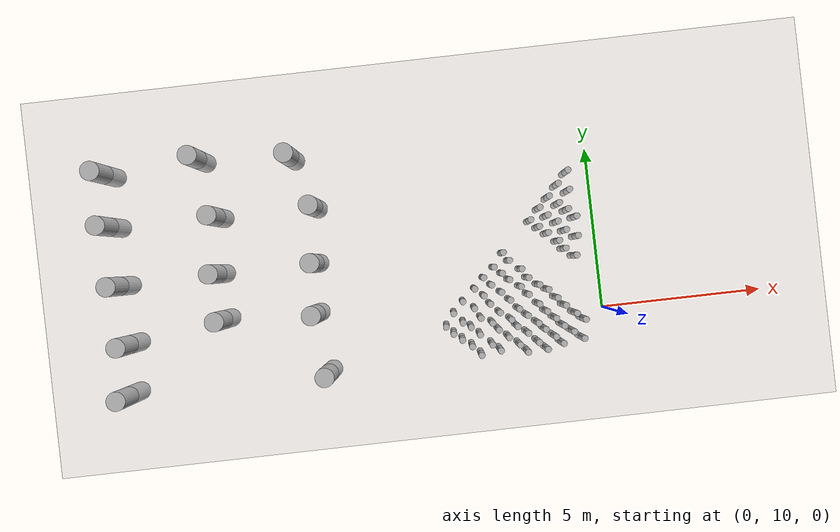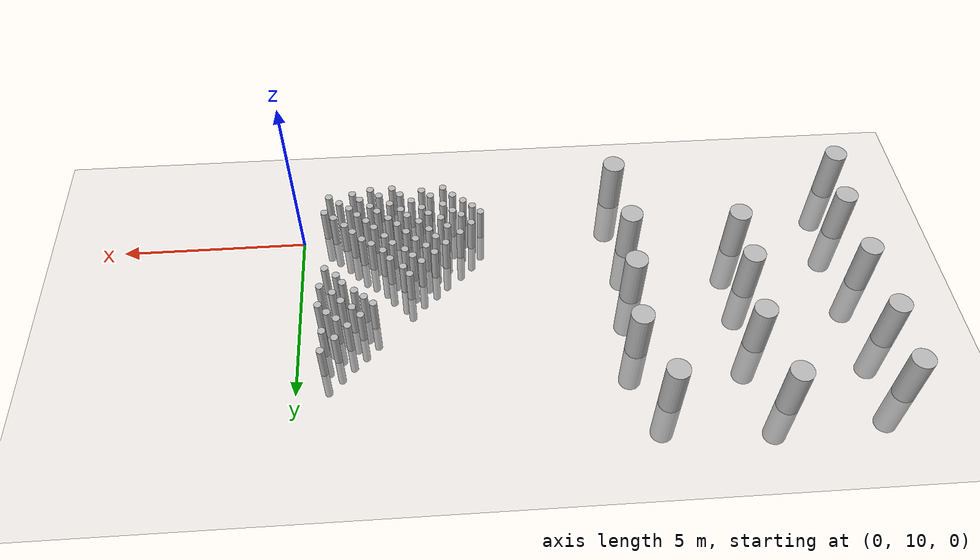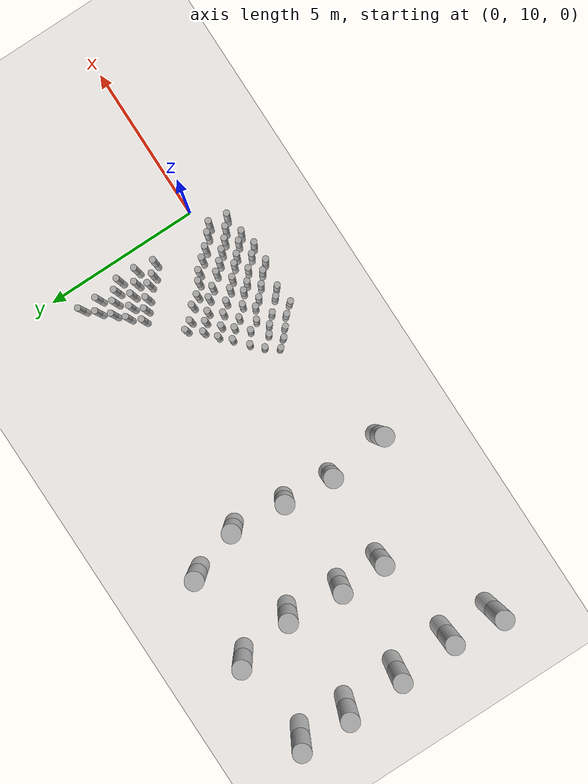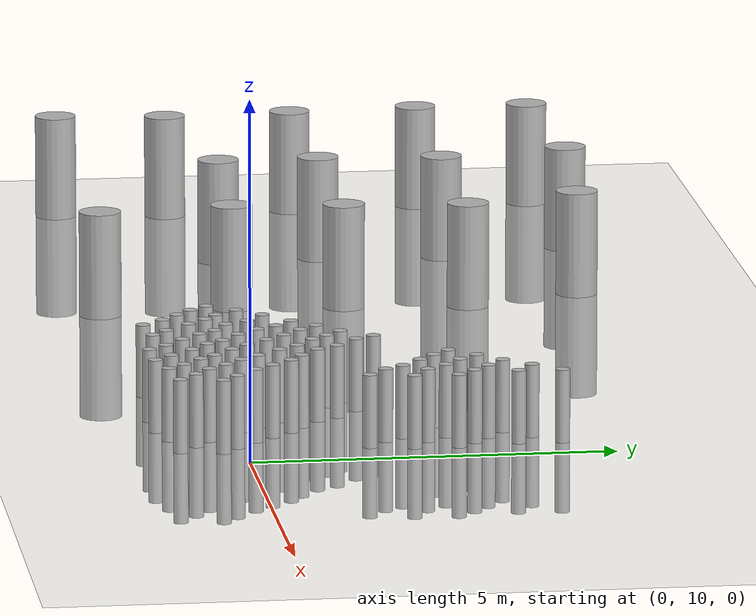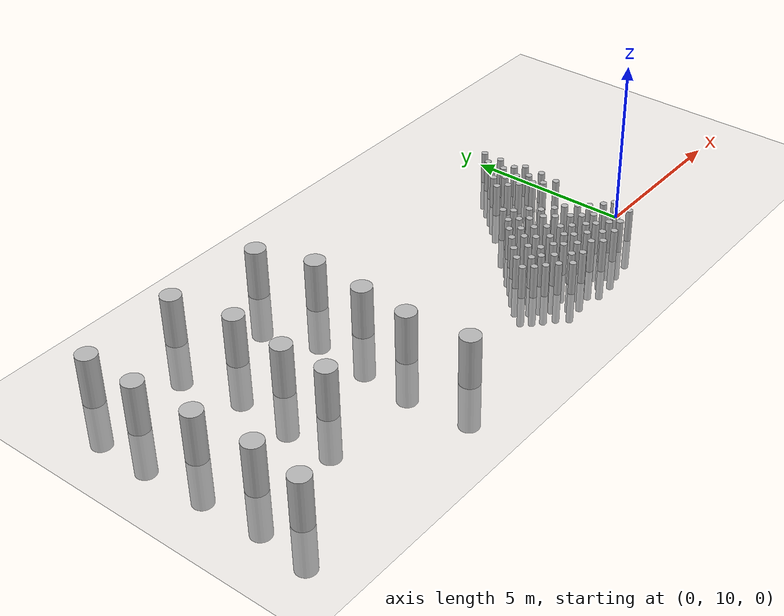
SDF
<sdf version="1.7">
 <world name="farmland_world">
  <model name="ground_plane">
   <static>1</static>
   <link name="link">
    <collision name="collision">
     <geometry><plane><normal>0 0 1</normal><size>40.0 40.0</size></plane></geometry>
     <surface><friction><ode><mu>100</mu><mu2>50</mu2></ode></friction></surface>
    </collision>
    <visual name="visual">
     <cast_shadows>0</cast_shadows>
     <geometry><plane><normal>0 0 1</normal><size>40.0 40.0</size></plane></geometry>
     <material>
      <script><uri>file://media/materials/scripts/gazebo.material</uri><name>Gazebo/Grey</name></script>
     </material>
    </visual>
   </link>
  </model>
  <model name="tree_0_0">
   <static>1</static>
   <link name="link">
    <collision name="collision">
     <geometry><cylinder><radius>0.3</radius><length>3.0</length></cylinder></geometry>
     <surface><friction><ode><mu>100</mu><mu2>50</mu2></ode></friction></surface>
    </collision>
    <visual name="visual">
     <geometry><cylinder><radius>0.3</radius><length>3.0</length></cylinder></geometry>
    </visual>
   </link>
   <pose>-15.188938652736043 15.912597027168243 0 0 0 0</pose>
  </model>
  <model name="tree_0_1">
   <static>1</static>
   <link name="link">
    <collision name="collision">
     <geometry><cylinder><radius>0.3</radius><length>3.0</length></cylinder></geometry>
     <surface><friction><ode><mu>100</mu><mu2>50</mu2></ode></friction></surface>
    </collision>
    <visual name="visual">
     <geometry><cylinder><radius>0.3</radius><length>3.0</length></cylinder></geometry>
    </visual>
   </link>
   <pose>-15.203481922949232 14.246356640369596 0 0 0 0</pose>
  </model>
  <model name="tree_0_2">
   <static>1</static>
   <link name="link">
    <collision name="collision">
     <geometry><cylinder><radius>0.3</radius><length>3.0</length></cylinder></geometry>
     <surface><friction><ode><mu>100</mu><mu2>50</mu2></ode></friction></surface>
    </collision>
    <visual name="visual">
     <geometry><cylinder><radius>0.3</radius><length>3.0</length></cylinder></geometry>
    </visual>
   </link>
   <pose>-15.091736200138948 12.349055719096812 0 0 0 0</pose>
  </model>
  <model name="tree_0_3">
   <static>1</static>
   <link name="link">
    <collision name="collision">
     <geometry><cylinder><radius>0.3</radius><length>3.0</length></cylinder></geometry>
     <surface><friction><ode><mu>100</mu><mu2>50</mu2></ode></friction></surface>
    </collision>
    <visual name="visual">
     <geometry><cylinder><radius>0.3</radius><length>3.0</length></cylinder></geometry>
    </visual>
   </link>
   <pose>-15.0005537468897 10.475004583335092 0 0 0 0</pose>
  </model>
  <model name="tree_0_4">
   <static>1</static>
   <link name="link">
    <collision name="collision">
     <geometry><cylinder><radius>0.3</radius><length>3.0</length></cylinder></geometry>
     <surface><friction><ode><mu>100</mu><mu2>50</mu2></ode></friction></surface>
    </collision>
    <visual name="visual">
     <geometry><cylinder><radius>0.3</radius><length>3.0</length></cylinder></geometry>
    </visual>
   </link>
   <pose>-15.176880996043332 8.868891120534228 0 0 0 0</pose>
  </model>
  <model name="tree_0_10">
   <static>1</static>
   <link name="link">
    <collision name="collision">
     <geometry><cylinder><radius>0.3</radius><length>3.0</length></cylinder></geometry>
     <surface><friction><ode><mu>100</mu><mu2>50</mu2></ode></friction></surface>
    </collision>
    <visual name="visual">
     <geometry><cylinder><radius>0.3</radius><length>3.0</length></cylinder></geometry>
    </visual>
   </link>
   <pose>-12.198636150211716 16.060505452191354 0 0 0 0</pose>
  </model>
  <model name="tree_0_11">
   <static>1</static>
   <link name="link">
    <collision name="collision">
     <geometry><cylinder><radius>0.3</radius><length>3.0</length></cylinder></geometry>
     <surface><friction><ode><mu>100</mu><mu2>50</mu2></ode></friction></surface>
    </collision>
    <visual name="visual">
     <geometry><cylinder><radius>0.3</radius><length>3.0</length></cylinder></geometry>
    </visual>
   </link>
   <pose>-11.810280494804624 14.18254066707638 0 0 0 0</pose>
  </model>
  <model name="tree_0_12">
   <static>1</static>
   <link name="link">
    <collision name="collision">
     <geometry><cylinder><radius>0.3</radius><length>3.0</length></cylinder></geometry>
     <surface><friction><ode><mu>100</mu><mu2>50</mu2></ode></friction></surface>
    </collision>
    <visual name="visual">
     <geometry><cylinder><radius>0.3</radius><length>3.0</length></cylinder></geometry>
    </visual>
   </link>
   <pose>-11.963897516112725 12.390226497976228 0 0 0 0</pose>
  </model>
  <model name="tree_0_13">
   <static>1</static>
   <link name="link">
    <collision name="collision">
     <geometry><cylinder><radius>0.3</radius><length>3.0</length></cylinder></geometry>
     <surface><friction><ode><mu>100</mu><mu2>50</mu2></ode></friction></surface>
    </collision>
    <visual name="visual">
     <geometry><cylinder><radius>0.3</radius><length>3.0</length></cylinder></geometry>
    </visual>
   </link>
   <pose>-11.947877016899797 10.925969713041379 0 0 0 0</pose>
  </model>
  <model name="tree_0_20">
   <static>1</static>
   <link name="link">
    <collision name="collision">
     <geometry><cylinder><radius>0.3</radius><length>3.0</length></cylinder></geometry>
     <surface><friction><ode><mu>100</mu><mu2>50</mu2></ode></friction></surface>
    </collision>
    <visual name="visual">
     <geometry><cylinder><radius>0.3</radius><length>3.0</length></cylinder></geometry>
    </visual>
   </link>
   <pose>-9.286984200792807 15.807528742943724 0 0 0 0</pose>
  </model>
  <model name="tree_0_21">
   <static>1</static>
   <link name="link">
    <collision name="collision">
     <geometry><cylinder><radius>0.3</radius><length>3.0</length></cylinder></geometry>
     <surface><friction><ode><mu>100</mu><mu2>50</mu2></ode></friction></surface>
    </collision>
    <visual name="visual">
     <geometry><cylinder><radius>0.3</radius><length>3.0</length></cylinder></geometry>
    </visual>
   </link>
   <pose>-8.71895008446544 14.152625368785882 0 0 0 0</pose>
  </model>
  <model name="tree_0_22">
   <static>1</static>
   <link name="link">
    <collision name="collision">
     <geometry><cylinder><radius>0.3</radius><length>3.0</length></cylinder></geometry>
     <surface><friction><ode><mu>100</mu><mu2>50</mu2></ode></friction></surface>
    </collision>
    <visual name="visual">
     <geometry><cylinder><radius>0.3</radius><length>3.0</length></cylinder></geometry>
    </visual>
   </link>
   <pose>-8.868159347672215 12.382050561455772 0 0 0 0</pose>
  </model>
  <model name="tree_0_23">
   <static>1</static>
   <link name="link">
    <collision name="collision">
     <geometry><cylinder><radius>0.3</radius><length>3.0</length></cylinder></geometry>
     <surface><friction><ode><mu>100</mu><mu2>50</mu2></ode></friction></surface>
    </collision>
    <visual name="visual">
     <geometry><cylinder><radius>0.3</radius><length>3.0</length></cylinder></geometry>
    </visual>
   </link>
   <pose>-9.004799411582681 10.782474336634904 0 0 0 0</pose>
  </model>
  <model name="tree_0_24">
   <static>1</static>
   <link name="link">
    <collision name="collision">
     <geometry><cylinder><radius>0.3</radius><length>3.0</length></cylinder></geometry>
     <surface><friction><ode><mu>100</mu><mu2>50</mu2></ode></friction></surface>
    </collision>
    <visual name="visual">
     <geometry><cylinder><radius>0.3</radius><length>3.0</length></cylinder></geometry>
    </visual>
   </link>
   <pose>-8.80205373108638 8.876663077848626 0 0 0 0</pose>
  </model>
  <model name="tree_2_35">
   <static>1</static>
   <link name="link">
    <collision name="collision">
     <geometry><cylinder><radius>0.1</radius><length>2.0</length></cylinder></geometry>
     <surface><friction><ode><mu>100</mu><mu2>50</mu2></ode></friction></surface>
    </collision>
    <visual name="visual">
     <geometry><cylinder><radius>0.1</radius><length>2.0</length></cylinder></geometry>
    </visual>
   </link>
   <pose>-3.9622020280694774 8.973889146367657 0 0 0 0</pose>
  </model>
  <model name="tree_2_36">
   <static>1</static>
   <link name="link">
    <collision name="collision">
     <geometry><cylinder><radius>0.1</radius><length>2.0</length></cylinder></geometry>
     <surface><friction><ode><mu>100</mu><mu2>50</mu2></ode></friction></surface>
    </collision>
    <visual name="visual">
     <geometry><cylinder><radius>0.1</radius><length>2.0</length></cylinder></geometry>
    </visual>
   </link>
   <pose>-4.218497410122248 9.269755400800028 0 0 0 0</pose>
  </model>
  <model name="tree_2_37">
   <static>1</static>
   <link name="link">
    <collision name="collision">
     <geometry><cylinder><radius>0.1</radius><length>2.0</length></cylinder></geometry>
     <surface><friction><ode><mu>100</mu><mu2>50</mu2></ode></friction></surface>
    </collision>
    <visual name="visual">
     <geometry><cylinder><radius>0.1</radius><length>2.0</length></cylinder></geometry>
    </visual>
   </link>
   <pose>-4.504532542228673 9.503960947641339 0 0 0 0</pose>
  </model>
  <model name="tree_2_38">
   <static>1</static>
   <link name="link">
    <collision name="collision">
     <geometry><cylinder><radius>0.1</radius><length>2.0</length></cylinder></geometry>
     <surface><friction><ode><mu>100</mu><mu2>50</mu2></ode></friction></surface>
    </collision>
    <visual name="visual">
     <geometry><cylinder><radius>0.1</radius><length>2.0</length></cylinder></geometry>
    </visual>
   </link>
   <pose>-4.750317775413917 9.716508049751724 0 0 0 0</pose>
  </model>
  <model name="tree_2_39">
   <static>1</static>
   <link name="link">
    <collision name="collision">
     <geometry><cylinder><radius>0.1</radius><length>2.0</length></cylinder></geometry>
     <surface><friction><ode><mu>100</mu><mu2>50</mu2></ode></friction></surface>
    </collision>
    <visual name="visual">
     <geometry><cylinder><radius>0.1</radius><length>2.0</length></cylinder></geometry>
    </visual>
   </link>
   <pose>-4.961447914720045 9.96134387457298 0 0 0 0</pose>
  </model>
  <model name="tree_2_71">
   <static>1</static>
   <link name="link">
    <collision name="collision">
     <geometry><cylinder><radius>0.1</radius><length>2.0</length></cylinder></geometry>
     <surface><friction><ode><mu>100</mu><mu2>50</mu2></ode></friction></surface>
    </collision>
    <visual name="visual">
     <geometry><cylinder><radius>0.1</radius><length>2.0</length></cylinder></geometry>
    </visual>
   </link>
   <pose>-1.9134299410022986 8.926474159186103 0 0 0 0</pose>
  </model>
  <model name="tree_2_72">
   <static>1</static>
   <link name="link">
    <collision name="collision">
     <geometry><cylinder><radius>0.1</radius><length>2.0</length></cylinder></geometry>
     <surface><friction><ode><mu>100</mu><mu2>50</mu2></ode></friction></surface>
    </collision>
    <visual name="visual">
     <geometry><cylinder><radius>0.1</radius><length>2.0</length></cylinder></geometry>
    </visual>
   </link>
   <pose>-2.159365029131232 9.171384043275479 0 0 0 0</pose>
  </model>
  <model name="tree_2_73">
   <static>1</static>
   <link name="link">
    <collision name="collision">
     <geometry><cylinder><radius>0.1</radius><length>2.0</length></cylinder></geometry>
     <surface><friction><ode><mu>100</mu><mu2>50</mu2></ode></friction></surface>
    </collision>
    <visual name="visual">
     <geometry><cylinder><radius>0.1</radius><length>2.0</length></cylinder></geometry>
    </visual>
   </link>
   <pose>-2.4577474948874216 9.488132304672078 0 0 0 0</pose>
  </model>
  <model name="tree_2_74">
   <static>1</static>
   <link name="link">
    <collision name="collision">
     <geometry><cylinder><radius>0.1</radius><length>2.0</length></cylinder></geometry>
     <surface><friction><ode><mu>100</mu><mu2>50</mu2></ode></friction></surface>
    </collision>
    <visual name="visual">
     <geometry><cylinder><radius>0.1</radius><length>2.0</length></cylinder></geometry>
    </visual>
   </link>
   <pose>-2.7630006261787905 9.73053380347542 0 0 0 0</pose>
  </model>
  <model name="tree_2_75">
   <static>1</static>
   <link name="link">
    <collision name="collision">
     <geometry><cylinder><radius>0.1</radius><length>2.0</length></cylinder></geometry>
     <surface><friction><ode><mu>100</mu><mu2>50</mu2></ode></friction></surface>
    </collision>
    <visual name="visual">
     <geometry><cylinder><radius>0.1</radius><length>2.0</length></cylinder></geometry>
    </visual>
   </link>
   <pose>-2.929292210744488 9.961238208450151 0 0 0 0</pose>
  </model>
  <model name="tree_2_76">
   <static>1</static>
   <link name="link">
    <collision name="collision">
     <geometry><cylinder><radius>0.1</radius><length>2.0</length></cylinder></geometry>
     <surface><friction><ode><mu>100</mu><mu2>50</mu2></ode></friction></surface>
    </collision>
    <visual name="visual">
     <geometry><cylinder><radius>0.1</radius><length>2.0</length></cylinder></geometry>
    </visual>
   </link>
   <pose>-3.25464770695766 10.213791297746333 0 0 0 0</pose>
  </model>
  <model name="tree_2_77">
   <static>1</static>
   <link name="link">
    <collision name="collision">
     <geometry><cylinder><radius>0.1</radius><length>2.0</length></cylinder></geometry>
     <surface><friction><ode><mu>100</mu><mu2>50</mu2></ode></friction></surface>
    </collision>
    <visual name="visual">
     <geometry><cylinder><radius>0.1</radius><length>2.0</length></cylinder></geometry>
    </visual>
   </link>
   <pose>-3.5209436233128493 10.508652208841735 0 0 0 0</pose>
  </model>
  <model name="tree_2_78">
   <static>1</static>
   <link name="link">
    <collision name="collision">
     <geometry><cylinder><radius>0.1</radius><length>2.0</length></cylinder></geometry>
     <surface><friction><ode><mu>100</mu><mu2>50</mu2></ode></friction></surface>
    </collision>
    <visual name="visual">
     <geometry><cylinder><radius>0.1</radius><length>2.0</length></cylinder></geometry>
    </visual>
   </link>
   <pose>-3.693728679398263 10.788324537276933 0 0 0 0</pose>
  </model>
  <model name="tree_2_79">
   <static>1</static>
   <link name="link">
    <collision name="collision">
     <geometry><cylinder><radius>0.1</radius><length>2.0</length></cylinder></geometry>
     <surface><friction><ode><mu>100</mu><mu2>50</mu2></ode></friction></surface>
    </collision>
    <visual name="visual">
     <geometry><cylinder><radius>0.1</radius><length>2.0</length></cylinder></geometry>
    </visual>
   </link>
   <pose>-3.9564810171639166 11.028106380455974 0 0 0 0</pose>
  </model>
  <model name="tree_2_110">
   <static>1</static>
   <link name="link">
    <collision name="collision">
     <geometry><cylinder><radius>0.1</radius><length>2.0</length></cylinder></geometry>
     <surface><friction><ode><mu>100</mu><mu2>50</mu2></ode></friction></surface>
    </collision>
    <visual name="visual">
     <geometry><cylinder><radius>0.1</radius><length>2.0</length></cylinder></geometry>
    </visual>
   </link>
   <pose>-0.6515382330412771 9.717331015148037 0 0 0 0</pose>
  </model>
  <model name="tree_2_111">
   <static>1</static>
   <link name="link">
    <collision name="collision">
     <geometry><cylinder><radius>0.1</radius><length>2.0</length></cylinder></geometry>
     <surface><friction><ode><mu>100</mu><mu2>50</mu2></ode></friction></surface>
    </collision>
    <visual name="visual">
     <geometry><cylinder><radius>0.1</radius><length>2.0</length></cylinder></geometry>
    </visual>
   </link>
   <pose>-0.9029069918345026 9.932396428231575 0 0 0 0</pose>
  </model>
  <model name="tree_2_112">
   <static>1</static>
   <link name="link">
    <collision name="collision">
     <geometry><cylinder><radius>0.1</radius><length>2.0</length></cylinder></geometry>
     <surface><friction><ode><mu>100</mu><mu2>50</mu2></ode></friction></surface>
    </collision>
    <visual name="visual">
     <geometry><cylinder><radius>0.1</radius><length>2.0</length></cylinder></geometry>
    </visual>
   </link>
   <pose>-1.2108938586534732 10.217397095038073 0 0 0 0</pose>
  </model>
  <model name="tree_2_113">
   <static>1</static>
   <link name="link">
    <collision name="collision">
     <geometry><cylinder><radius>0.1</radius><length>2.0</length></cylinder></geometry>
     <surface><friction><ode><mu>100</mu><mu2>50</mu2></ode></friction></surface>
    </collision>
    <visual name="visual">
     <geometry><cylinder><radius>0.1</radius><length>2.0</length></cylinder></geometry>
    </visual>
   </link>
   <pose>-1.4373226213990342 10.476553215425714 0 0 0 0</pose>
  </model>
  <model name="tree_2_114">
   <static>1</static>
   <link name="link">
    <collision name="collision">
     <geometry><cylinder><radius>0.1</radius><length>2.0</length></cylinder></geometry>
     <surface><friction><ode><mu>100</mu><mu2>50</mu2></ode></friction></surface>
    </collision>
    <visual name="visual">
     <geometry><cylinder><radius>0.1</radius><length>2.0</length></cylinder></geometry>
    </visual>
   </link>
   <pose>-1.691676709947819 10.761102270041352 0 0 0 0</pose>
  </model>
  <model name="tree_2_115">
   <static>1</static>
   <link name="link">
    <collision name="collision">
     <geometry><cylinder><radius>0.1</radius><length>2.0</length></cylinder></geometry>
     <surface><friction><ode><mu>100</mu><mu2>50</mu2></ode></friction></surface>
    </collision>
    <visual name="visual">
     <geometry><cylinder><radius>0.1</radius><length>2.0</length></cylinder></geometry>
    </visual>
   </link>
   <pose>-1.9525184044487895 10.939210153154551 0 0 0 0</pose>
  </model>
  <model name="tree_2_116">
   <static>1</static>
   <link name="link">
    <collision name="collision">
     <geometry><cylinder><radius>0.1</radius><length>2.0</length></cylinder></geometry>
     <surface><friction><ode><mu>100</mu><mu2>50</mu2></ode></friction></surface>
    </collision>
    <visual name="visual">
     <geometry><cylinder><radius>0.1</radius><length>2.0</length></cylinder></geometry>
    </visual>
   </link>
   <pose>-2.264281364958338 11.191772419844481 0 0 0 0</pose>
  </model>
  <model name="tree_2_117">
   <static>1</static>
   <link name="link">
    <collision name="collision">
     <geometry><cylinder><radius>0.1</radius><length>2.0</length></cylinder></geometry>
     <surface><friction><ode><mu>100</mu><mu2>50</mu2></ode></friction></surface>
    </collision>
    <visual name="visual">
     <geometry><cylinder><radius>0.1</radius><length>2.0</length></cylinder></geometry>
    </visual>
   </link>
   <pose>-2.4464782804025234 11.484873066334552 0 0 0 0</pose>
  </model>
  <model name="tree_2_118">
   <static>1</static>
   <link name="link">
    <collision name="collision">
     <geometry><cylinder><radius>0.1</radius><length>2.0</length></cylinder></geometry>
     <surface><friction><ode><mu>100</mu><mu2>50</mu2></ode></friction></surface>
    </collision>
    <visual name="visual">
     <geometry><cylinder><radius>0.1</radius><length>2.0</length></cylinder></geometry>
    </visual>
   </link>
   <pose>-2.79316826616015 11.78830092527027 0 0 0 0</pose>
  </model>
  <model name="tree_2_119">
   <static>1</static>
   <link name="link">
    <collision name="collision">
     <geometry><cylinder><radius>0.1</radius><length>2.0</length></cylinder></geometry>
     <surface><friction><ode><mu>100</mu><mu2>50</mu2></ode></friction></surface>
    </collision>
    <visual name="visual">
     <geometry><cylinder><radius>0.1</radius><length>2.0</length></cylinder></geometry>
    </visual>
   </link>
   <pose>-2.958938743072737 12.049731483031 0 0 0 0</pose>
  </model>
  <model name="tree_2_154">
   <static>1</static>
   <link name="link">
    <collision name="collision">
     <geometry><cylinder><radius>0.1</radius><length>2.0</length></cylinder></geometry>
     <surface><friction><ode><mu>100</mu><mu2>50</mu2></ode></friction></surface>
    </collision>
    <visual name="visual">
     <geometry><cylinder><radius>0.1</radius><length>2.0</length></cylinder></geometry>
    </visual>
   </link>
   <pose>-0.7178020939533792 11.718756306111352 0 0 0 0</pose>
  </model>
  <model name="tree_2_155">
   <static>1</static>
   <link name="link">
    <collision name="collision">
     <geometry><cylinder><radius>0.1</radius><length>2.0</length></cylinder></geometry>
     <surface><friction><ode><mu>100</mu><mu2>50</mu2></ode></friction></surface>
    </collision>
    <visual name="visual">
     <geometry><cylinder><radius>0.1</radius><length>2.0</length></cylinder></geometry>
    </visual>
   </link>
   <pose>-1.022637077949053 11.970871446959404 0 0 0 0</pose>
  </model>
  <model name="tree_2_156">
   <static>1</static>
   <link name="link">
    <collision name="collision">
     <geometry><cylinder><radius>0.1</radius><length>2.0</length></cylinder></geometry>
     <surface><friction><ode><mu>100</mu><mu2>50</mu2></ode></friction></surface>
    </collision>
    <visual name="visual">
     <geometry><cylinder><radius>0.1</radius><length>2.0</length></cylinder></geometry>
    </visual>
   </link>
   <pose>-1.1940386431235368 12.228151937682467 0 0 0 0</pose>
  </model>
  <model name="tree_2_157">
   <static>1</static>
   <link name="link">
    <collision name="collision">
     <geometry><cylinder><radius>0.1</radius><length>2.0</length></cylinder></geometry>
     <surface><friction><ode><mu>100</mu><mu2>50</mu2></ode></friction></surface>
    </collision>
    <visual name="visual">
     <geometry><cylinder><radius>0.1</radius><length>2.0</length></cylinder></geometry>
    </visual>
   </link>
   <pose>-1.5073592860621352 12.506254013429565 0 0 0 0</pose>
  </model>
  <model name="tree_2_158">
   <static>1</static>
   <link name="link">
    <collision name="collision">
     <geometry><cylinder><radius>0.1</radius><length>2.0</length></cylinder></geometry>
     <surface><friction><ode><mu>100</mu><mu2>50</mu2></ode></friction></surface>
    </collision>
    <visual name="visual">
     <geometry><cylinder><radius>0.1</radius><length>2.0</length></cylinder></geometry>
    </visual>
   </link>
   <pose>-1.7602710342026335 12.726628349052469 0 0 0 0</pose>
  </model>
  <model name="tree_2_159">
   <static>1</static>
   <link name="link">
    <collision name="collision">
     <geometry><cylinder><radius>0.1</radius><length>2.0</length></cylinder></geometry>
     <surface><friction><ode><mu>100</mu><mu2>50</mu2></ode></friction></surface>
    </collision>
    <visual name="visual">
     <geometry><cylinder><radius>0.1</radius><length>2.0</length></cylinder></geometry>
    </visual>
   </link>
   <pose>-2.0019301251231227 12.958106680565077 0 0 0 0</pose>
  </model>
  <model name="tree_2_198">
   <static>1</static>
   <link name="link">
    <collision name="collision">
     <geometry><cylinder><radius>0.1</radius><length>2.0</length></cylinder></geometry>
     <surface><friction><ode><mu>100</mu><mu2>50</mu2></ode></friction></surface>
    </collision>
    <visual name="visual">
     <geometry><cylinder><radius>0.1</radius><length>2.0</length></cylinder></geometry>
    </visual>
   </link>
   <pose>-0.7145939792266051 13.753588885283417 0 0 0 0</pose>
  </model>
  <model name="tree_2_199">
   <static>1</static>
   <link name="link">
    <collision name="collision">
     <geometry><cylinder><radius>0.1</radius><length>2.0</length></cylinder></geometry>
     <surface><friction><ode><mu>100</mu><mu2>50</mu2></ode></friction></surface>
    </collision>
    <visual name="visual">
     <geometry><cylinder><radius>0.1</radius><length>2.0</length></cylinder></geometry>
    </visual>
   </link>
   <pose>-1.0426244276867378 13.978159229005612 0 0 0 0</pose>
  </model>
  <model name="tree_2_274">
   <static>1</static>
   <link name="link">
    <collision name="collision">
     <geometry><cylinder><radius>0.1</radius><length>2.0</length></cylinder></geometry>
     <surface><friction><ode><mu>100</mu><mu2>50</mu2></ode></friction></surface>
    </collision>
    <visual name="visual">
     <geometry><cylinder><radius>0.1</radius><length>2.0</length></cylinder></geometry>
    </visual>
   </link>
   <pose>-3.3576854524746014 9.046221494850334 0 0 0 0</pose>
  </model>
  <model name="tree_2_275">
   <static>1</static>
   <link name="link">
    <collision name="collision">
     <geometry><cylinder><radius>0.1</radius><length>2.0</length></cylinder></geometry>
     <surface><friction><ode><mu>100</mu><mu2>50</mu2></ode></friction></surface>
    </collision>
    <visual name="visual">
     <geometry><cylinder><radius>0.1</radius><length>2.0</length></cylinder></geometry>
    </visual>
   </link>
   <pose>-3.5965869434674955 9.258844725206748 0 0 0 0</pose>
  </model>
  <model name="tree_2_276">
   <static>1</static>
   <link name="link">
    <collision name="collision">
     <geometry><cylinder><radius>0.1</radius><length>2.0</length></cylinder></geometry>
     <surface><friction><ode><mu>100</mu><mu2>50</mu2></ode></friction></surface>
    </collision>
    <visual name="visual">
     <geometry><cylinder><radius>0.1</radius><length>2.0</length></cylinder></geometry>
    </visual>
   </link>
   <pose>-3.940045185333485 9.603498110845367 0 0 0 0</pose>
  </model>
  <model name="tree_2_277">
   <static>1</static>
   <link name="link">
    <collision name="collision">
     <geometry><cylinder><radius>0.1</radius><length>2.0</length></cylinder></geometry>
     <surface><friction><ode><mu>100</mu><mu2>50</mu2></ode></friction></surface>
    </collision>
    <visual name="visual">
     <geometry><cylinder><radius>0.1</radius><length>2.0</length></cylinder></geometry>
    </visual>
   </link>
   <pose>-4.192677639353347 9.864076155540431 0 0 0 0</pose>
  </model>
  <model name="tree_2_278">
   <static>1</static>
   <link name="link">
    <collision name="collision">
     <geometry><cylinder><radius>0.1</radius><length>2.0</length></cylinder></geometry>
     <surface><friction><ode><mu>100</mu><mu2>50</mu2></ode></friction></surface>
    </collision>
    <visual name="visual">
     <geometry><cylinder><radius>0.1</radius><length>2.0</length></cylinder></geometry>
    </visual>
   </link>
   <pose>-4.428591520917538 10.03222945930731 0 0 0 0</pose>
  </model>
  <model name="tree_2_279">
   <static>1</static>
   <link name="link">
    <collision name="collision">
     <geometry><cylinder><radius>0.1</radius><length>2.0</length></cylinder></geometry>
     <surface><friction><ode><mu>100</mu><mu2>50</mu2></ode></friction></surface>
    </collision>
    <visual name="visual">
     <geometry><cylinder><radius>0.1</radius><length>2.0</length></cylinder></geometry>
    </visual>
   </link>
   <pose>-4.68577423219013 10.348556811869264 0 0 0 0</pose>
  </model>
  <model name="tree_2_312">
   <static>1</static>
   <link name="link">
    <collision name="collision">
     <geometry><cylinder><radius>0.1</radius><length>2.0</length></cylinder></geometry>
     <surface><friction><ode><mu>100</mu><mu2>50</mu2></ode></friction></surface>
    </collision>
    <visual name="visual">
     <geometry><cylinder><radius>0.1</radius><length>2.0</length></cylinder></geometry>
    </visual>
   </link>
   <pose>-2.526592470325401 8.911227736997287 0 0 0 0</pose>
  </model>
  <model name="tree_2_313">
   <static>1</static>
   <link name="link">
    <collision name="collision">
     <geometry><cylinder><radius>0.1</radius><length>2.0</length></cylinder></geometry>
     <surface><friction><ode><mu>100</mu><mu2>50</mu2></ode></friction></surface>
    </collision>
    <visual name="visual">
     <geometry><cylinder><radius>0.1</radius><length>2.0</length></cylinder></geometry>
    </visual>
   </link>
   <pose>-2.7478471699991394 9.162318972946377 0 0 0 0</pose>
  </model>
  <model name="tree_2_314">
   <static>1</static>
   <link name="link">
    <collision name="collision">
     <geometry><cylinder><radius>0.1</radius><length>2.0</length></cylinder></geometry>
     <surface><friction><ode><mu>100</mu><mu2>50</mu2></ode></friction></surface>
    </collision>
    <visual name="visual">
     <geometry><cylinder><radius>0.1</radius><length>2.0</length></cylinder></geometry>
    </visual>
   </link>
   <pose>-3.060894192569338 9.421552628123557 0 0 0 0</pose>
  </model>
  <model name="tree_2_315">
   <static>1</static>
   <link name="link">
    <collision name="collision">
     <geometry><cylinder><radius>0.1</radius><length>2.0</length></cylinder></geometry>
     <surface><friction><ode><mu>100</mu><mu2>50</mu2></ode></friction></surface>
    </collision>
    <visual name="visual">
     <geometry><cylinder><radius>0.1</radius><length>2.0</length></cylinder></geometry>
    </visual>
   </link>
   <pose>-3.3472663319250016 9.690069700377013 0 0 0 0</pose>
  </model>
  <model name="tree_2_316">
   <static>1</static>
   <link name="link">
    <collision name="collision">
     <geometry><cylinder><radius>0.1</radius><length>2.0</length></cylinder></geometry>
     <surface><friction><ode><mu>100</mu><mu2>50</mu2></ode></friction></surface>
    </collision>
    <visual name="visual">
     <geometry><cylinder><radius>0.1</radius><length>2.0</length></cylinder></geometry>
    </visual>
   </link>
   <pose>-3.5215979008821723 9.921228500300202 0 0 0 0</pose>
  </model>
  <model name="tree_2_317">
   <static>1</static>
   <link name="link">
    <collision name="collision">
     <geometry><cylinder><radius>0.1</radius><length>2.0</length></cylinder></geometry>
     <surface><friction><ode><mu>100</mu><mu2>50</mu2></ode></friction></surface>
    </collision>
    <visual name="visual">
     <geometry><cylinder><radius>0.1</radius><length>2.0</length></cylinder></geometry>
    </visual>
   </link>
   <pose>-3.8627019327238092 10.11040592133592 0 0 0 0</pose>
  </model>
  <model name="tree_2_318">
   <static>1</static>
   <link name="link">
    <collision name="collision">
     <geometry><cylinder><radius>0.1</radius><length>2.0</length></cylinder></geometry>
     <surface><friction><ode><mu>100</mu><mu2>50</mu2></ode></friction></surface>
    </collision>
    <visual name="visual">
     <geometry><cylinder><radius>0.1</radius><length>2.0</length></cylinder></geometry>
    </visual>
   </link>
   <pose>-4.026490378323312 10.427333952214331 0 0 0 0</pose>
  </model>
  <model name="tree_2_319">
   <static>1</static>
   <link name="link">
    <collision name="collision">
     <geometry><cylinder><radius>0.1</radius><length>2.0</length></cylinder></geometry>
     <surface><friction><ode><mu>100</mu><mu2>50</mu2></ode></friction></surface>
    </collision>
    <visual name="visual">
     <geometry><cylinder><radius>0.1</radius><length>2.0</length></cylinder></geometry>
    </visual>
   </link>
   <pose>-4.361175910165589 10.675416441804977 0 0 0 0</pose>
  </model>
  <model name="tree_2_350">
   <static>1</static>
   <link name="link">
    <collision name="collision">
     <geometry><cylinder><radius>0.1</radius><length>2.0</length></cylinder></geometry>
     <surface><friction><ode><mu>100</mu><mu2>50</mu2></ode></friction></surface>
    </collision>
    <visual name="visual">
     <geometry><cylinder><radius>0.1</radius><length>2.0</length></cylinder></geometry>
    </visual>
   </link>
   <pose>-1.4114964588509478 9.056229628551845 0 0 0 0</pose>
  </model>
  <model name="tree_2_351">
   <static>1</static>
   <link name="link">
    <collision name="collision">
     <geometry><cylinder><radius>0.1</radius><length>2.0</length></cylinder></geometry>
     <surface><friction><ode><mu>100</mu><mu2>50</mu2></ode></friction></surface>
    </collision>
    <visual name="visual">
     <geometry><cylinder><radius>0.1</radius><length>2.0</length></cylinder></geometry>
    </visual>
   </link>
   <pose>-1.6194635461067841 9.286526433795766 0 0 0 0</pose>
  </model>
  <model name="tree_2_352">
   <static>1</static>
   <link name="link">
    <collision name="collision">
     <geometry><cylinder><radius>0.1</radius><length>2.0</length></cylinder></geometry>
     <surface><friction><ode><mu>100</mu><mu2>50</mu2></ode></friction></surface>
    </collision>
    <visual name="visual">
     <geometry><cylinder><radius>0.1</radius><length>2.0</length></cylinder></geometry>
    </visual>
   </link>
   <pose>-1.9100457584191666 9.547351348699308 0 0 0 0</pose>
  </model>
  <model name="tree_2_353">
   <static>1</static>
   <link name="link">
    <collision name="collision">
     <geometry><cylinder><radius>0.1</radius><length>2.0</length></cylinder></geometry>
     <surface><friction><ode><mu>100</mu><mu2>50</mu2></ode></friction></surface>
    </collision>
    <visual name="visual">
     <geometry><cylinder><radius>0.1</radius><length>2.0</length></cylinder></geometry>
    </visual>
   </link>
   <pose>-2.1070544164671876 9.76083688688589 0 0 0 0</pose>
  </model>
  <model name="tree_2_354">
   <static>1</static>
   <link name="link">
    <collision name="collision">
     <geometry><cylinder><radius>0.1</radius><length>2.0</length></cylinder></geometry>
     <surface><friction><ode><mu>100</mu><mu2>50</mu2></ode></friction></surface>
    </collision>
    <visual name="visual">
     <geometry><cylinder><radius>0.1</radius><length>2.0</length></cylinder></geometry>
    </visual>
   </link>
   <pose>-2.4119955009868006 10.033711535142688 0 0 0 0</pose>
  </model>
  <model name="tree_2_355">
   <static>1</static>
   <link name="link">
    <collision name="collision">
     <geometry><cylinder><radius>0.1</radius><length>2.0</length></cylinder></geometry>
     <surface><friction><ode><mu>100</mu><mu2>50</mu2></ode></friction></surface>
    </collision>
    <visual name="visual">
     <geometry><cylinder><radius>0.1</radius><length>2.0</length></cylinder></geometry>
    </visual>
   </link>
   <pose>-2.651983931925378 10.266076224674464 0 0 0 0</pose>
  </model>
  <model name="tree_2_356">
   <static>1</static>
   <link name="link">
    <collision name="collision">
     <geometry><cylinder><radius>0.1</radius><length>2.0</length></cylinder></geometry>
     <surface><friction><ode><mu>100</mu><mu2>50</mu2></ode></friction></surface>
    </collision>
    <visual name="visual">
     <geometry><cylinder><radius>0.1</radius><length>2.0</length></cylinder></geometry>
    </visual>
   </link>
   <pose>-2.8971571623634182 10.565058928409005 0 0 0 0</pose>
  </model>
  <model name="tree_2_357">
   <static>1</static>
   <link name="link">
    <collision name="collision">
     <geometry><cylinder><radius>0.1</radius><length>2.0</length></cylinder></geometry>
     <surface><friction><ode><mu>100</mu><mu2>50</mu2></ode></friction></surface>
    </collision>
    <visual name="visual">
     <geometry><cylinder><radius>0.1</radius><length>2.0</length></cylinder></geometry>
    </visual>
   </link>
   <pose>-3.142489442228185 10.834258085164054 0 0 0 0</pose>
  </model>
  <model name="tree_2_358">
   <static>1</static>
   <link name="link">
    <collision name="collision">
     <geometry><cylinder><radius>0.1</radius><length>2.0</length></cylinder></geometry>
     <surface><friction><ode><mu>100</mu><mu2>50</mu2></ode></friction></surface>
    </collision>
    <visual name="visual">
     <geometry><cylinder><radius>0.1</radius><length>2.0</length></cylinder></geometry>
    </visual>
   </link>
   <pose>-3.4254863332118894 11.093177211376151 0 0 0 0</pose>
  </model>
  <model name="tree_2_359">
   <static>1</static>
   <link name="link">
    <collision name="collision">
     <geometry><cylinder><radius>0.1</radius><length>2.0</length></cylinder></geometry>
     <surface><friction><ode><mu>100</mu><mu2>50</mu2></ode></friction></surface>
    </collision>
    <visual name="visual">
     <geometry><cylinder><radius>0.1</radius><length>2.0</length></cylinder></geometry>
    </visual>
   </link>
   <pose>-3.6431697189006096 11.341486122895544 0 0 0 0</pose>
  </model>
  <model name="tree_2_389">
   <static>1</static>
   <link name="link">
    <collision name="collision">
     <geometry><cylinder><radius>0.1</radius><length>2.0</length></cylinder></geometry>
     <surface><friction><ode><mu>100</mu><mu2>50</mu2></ode></friction></surface>
    </collision>
    <visual name="visual">
     <geometry><cylinder><radius>0.1</radius><length>2.0</length></cylinder></geometry>
    </visual>
   </link>
   <pose>-0.7580862465311696 9.140674155968007 0 0 0 0</pose>
  </model>
  <model name="tree_2_390">
   <static>1</static>
   <link name="link">
    <collision name="collision">
     <geometry><cylinder><radius>0.1</radius><length>2.0</length></cylinder></geometry>
     <surface><friction><ode><mu>100</mu><mu2>50</mu2></ode></friction></surface>
    </collision>
    <visual name="visual">
     <geometry><cylinder><radius>0.1</radius><length>2.0</length></cylinder></geometry>
    </visual>
   </link>
   <pose>-1.0496058449356496 9.386210480508339 0 0 0 0</pose>
  </model>
  <model name="tree_2_391">
   <static>1</static>
   <link name="link">
    <collision name="collision">
     <geometry><cylinder><radius>0.1</radius><length>2.0</length></cylinder></geometry>
     <surface><friction><ode><mu>100</mu><mu2>50</mu2></ode></friction></surface>
    </collision>
    <visual name="visual">
     <geometry><cylinder><radius>0.1</radius><length>2.0</length></cylinder></geometry>
    </visual>
   </link>
   <pose>-1.3270636792373949 9.59887862136491 0 0 0 0</pose>
  </model>
  <model name="tree_2_392">
   <static>1</static>
   <link name="link">
    <collision name="collision">
     <geometry><cylinder><radius>0.1</radius><length>2.0</length></cylinder></geometry>
     <surface><friction><ode><mu>100</mu><mu2>50</mu2></ode></friction></surface>
    </collision>
    <visual name="visual">
     <geometry><cylinder><radius>0.1</radius><length>2.0</length></cylinder></geometry>
    </visual>
   </link>
   <pose>-1.5544943340204183 9.8525822447475 0 0 0 0</pose>
  </model>
  <model name="tree_2_393">
   <static>1</static>
   <link name="link">
    <collision name="collision">
     <geometry><cylinder><radius>0.1</radius><length>2.0</length></cylinder></geometry>
     <surface><friction><ode><mu>100</mu><mu2>50</mu2></ode></friction></surface>
    </collision>
    <visual name="visual">
     <geometry><cylinder><radius>0.1</radius><length>2.0</length></cylinder></geometry>
    </visual>
   </link>
   <pose>-1.803894129350871 10.094667106240067 0 0 0 0</pose>
  </model>
  <model name="tree_2_394">
   <static>1</static>
   <link name="link">
    <collision name="collision">
     <geometry><cylinder><radius>0.1</radius><length>2.0</length></cylinder></geometry>
     <surface><friction><ode><mu>100</mu><mu2>50</mu2></ode></friction></surface>
    </collision>
    <visual name="visual">
     <geometry><cylinder><radius>0.1</radius><length>2.0</length></cylinder></geometry>
    </visual>
   </link>
   <pose>-2.0178287826637744 10.346709701116719 0 0 0 0</pose>
  </model>
  <model name="tree_2_395">
   <static>1</static>
   <link name="link">
    <collision name="collision">
     <geometry><cylinder><radius>0.1</radius><length>2.0</length></cylinder></geometry>
     <surface><friction><ode><mu>100</mu><mu2>50</mu2></ode></friction></surface>
    </collision>
    <visual name="visual">
     <geometry><cylinder><radius>0.1</radius><length>2.0</length></cylinder></geometry>
    </visual>
   </link>
   <pose>-2.3089199913145286 10.675136711449777 0 0 0 0</pose>
  </model>
  <model name="tree_2_396">
   <static>1</static>
   <link name="link">
    <collision name="collision">
     <geometry><cylinder><radius>0.1</radius><length>2.0</length></cylinder></geometry>
     <surface><friction><ode><mu>100</mu><mu2>50</mu2></ode></friction></surface>
    </collision>
    <visual name="visual">
     <geometry><cylinder><radius>0.1</radius><length>2.0</length></cylinder></geometry>
    </visual>
   </link>
   <pose>-2.5245893845641683 10.943862585938454 0 0 0 0</pose>
  </model>
  <model name="tree_2_397">
   <static>1</static>
   <link name="link">
    <collision name="collision">
     <geometry><cylinder><radius>0.1</radius><length>2.0</length></cylinder></geometry>
     <surface><friction><ode><mu>100</mu><mu2>50</mu2></ode></friction></surface>
    </collision>
    <visual name="visual">
     <geometry><cylinder><radius>0.1</radius><length>2.0</length></cylinder></geometry>
    </visual>
   </link>
   <pose>-2.8514080102542727 11.195162047996773 0 0 0 0</pose>
  </model>
  <model name="tree_2_398">
   <static>1</static>
   <link name="link">
    <collision name="collision">
     <geometry><cylinder><radius>0.1</radius><length>2.0</length></cylinder></geometry>
     <surface><friction><ode><mu>100</mu><mu2>50</mu2></ode></friction></surface>
    </collision>
    <visual name="visual">
     <geometry><cylinder><radius>0.1</radius><length>2.0</length></cylinder></geometry>
    </visual>
   </link>
   <pose>-3.055183042292634 11.415327466946948 0 0 0 0</pose>
  </model>
  <model name="tree_2_399">
   <static>1</static>
   <link name="link">
    <collision name="collision">
     <geometry><cylinder><radius>0.1</radius><length>2.0</length></cylinder></geometry>
     <surface><friction><ode><mu>100</mu><mu2>50</mu2></ode></friction></surface>
    </collision>
    <visual name="visual">
     <geometry><cylinder><radius>0.1</radius><length>2.0</length></cylinder></geometry>
    </visual>
   </link>
   <pose>-3.2867772865437317 11.632942877628894 0 0 0 0</pose>
  </model>
  <model name="tree_2_435">
   <static>1</static>
   <link name="link">
    <collision name="collision">
     <geometry><cylinder><radius>0.1</radius><length>2.0</length></cylinder></geometry>
     <surface><friction><ode><mu>100</mu><mu2>50</mu2></ode></friction></surface>
    </collision>
    <visual name="visual">
     <geometry><cylinder><radius>0.1</radius><length>2.0</length></cylinder></geometry>
    </visual>
   </link>
   <pose>-0.6059368839308941 12.315703060688989 0 0 0 0</pose>
  </model>
  <model name="tree_2_436">
   <static>1</static>
   <link name="link">
    <collision name="collision">
     <geometry><cylinder><radius>0.1</radius><length>2.0</length></cylinder></geometry>
     <surface><friction><ode><mu>100</mu><mu2>50</mu2></ode></friction></surface>
    </collision>
    <visual name="visual">
     <geometry><cylinder><radius>0.1</radius><length>2.0</length></cylinder></geometry>
    </visual>
   </link>
   <pose>-0.9454813322525094 12.537576525398984 0 0 0 0</pose>
  </model>
  <model name="tree_2_437">
   <static>1</static>
   <link name="link">
    <collision name="collision">
     <geometry><cylinder><radius>0.1</radius><length>2.0</length></cylinder></geometry>
     <surface><friction><ode><mu>100</mu><mu2>50</mu2></ode></friction></surface>
    </collision>
    <visual name="visual">
     <geometry><cylinder><radius>0.1</radius><length>2.0</length></cylinder></geometry>
    </visual>
   </link>
   <pose>-1.1711566598476946 12.821816989759125 0 0 0 0</pose>
  </model>
  <model name="tree_2_438">
   <static>1</static>
   <link name="link">
    <collision name="collision">
     <geometry><cylinder><radius>0.1</radius><length>2.0</length></cylinder></geometry>
     <surface><friction><ode><mu>100</mu><mu2>50</mu2></ode></friction></surface>
    </collision>
    <visual name="visual">
     <geometry><cylinder><radius>0.1</radius><length>2.0</length></cylinder></geometry>
    </visual>
   </link>
   <pose>-1.4614347655612527 13.047922882793612 0 0 0 0</pose>
  </model>
  <model name="tree_2_439">
   <static>1</static>
   <link name="link">
    <collision name="collision">
     <geometry><cylinder><radius>0.1</radius><length>2.0</length></cylinder></geometry>
     <surface><friction><ode><mu>100</mu><mu2>50</mu2></ode></friction></surface>
    </collision>
    <visual name="visual">
     <geometry><cylinder><radius>0.1</radius><length>2.0</length></cylinder></geometry>
    </visual>
   </link>
   <pose>-1.6801539308099345 13.307825901755534 0 0 0 0</pose>
  </model>
  <model name="tree_2_476">
   <static>1</static>
   <link name="link">
    <collision name="collision">
     <geometry><cylinder><radius>0.1</radius><length>2.0</length></cylinder></geometry>
     <surface><friction><ode><mu>100</mu><mu2>50</mu2></ode></friction></surface>
    </collision>
    <visual name="visual">
     <geometry><cylinder><radius>0.1</radius><length>2.0</length></cylinder></geometry>
    </visual>
   </link>
   <pose>-0.5850214758215799 12.920656763997949 0 0 0 0</pose>
  </model>
  <model name="tree_2_477">
   <static>1</static>
   <link name="link">
    <collision name="collision">
     <geometry><cylinder><radius>0.1</radius><length>2.0</length></cylinder></geometry>
     <surface><friction><ode><mu>100</mu><mu2>50</mu2></ode></friction></surface>
    </collision>
    <visual name="visual">
     <geometry><cylinder><radius>0.1</radius><length>2.0</length></cylinder></geometry>
    </visual>
   </link>
   <pose>-0.8160884369244562 13.167223034092679 0 0 0 0</pose>
  </model>
  <model name="tree_2_478">
   <static>1</static>
   <link name="link">
    <collision name="collision">
     <geometry><cylinder><radius>0.1</radius><length>2.0</length></cylinder></geometry>
     <surface><friction><ode><mu>100</mu><mu2>50</mu2></ode></friction></surface>
    </collision>
    <visual name="visual">
     <geometry><cylinder><radius>0.1</radius><length>2.0</length></cylinder></geometry>
    </visual>
   </link>
   <pose>-1.0674351350955211 13.38474588562821 0 0 0 0</pose>
  </model>
  <model name="tree_2_479">
   <static>1</static>
   <link name="link">
    <collision name="collision">
     <geometry><cylinder><radius>0.1</radius><length>2.0</length></cylinder></geometry>
     <surface><friction><ode><mu>100</mu><mu2>50</mu2></ode></friction></surface>
    </collision>
    <visual name="visual">
     <geometry><cylinder><radius>0.1</radius><length>2.0</length></cylinder></geometry>
    </visual>
   </link>
   <pose>-1.3564149520325457 13.62078275560228 0 0 0 0</pose>
  </model>
  <model name="tree_2_519">
   <static>1</static>
   <link name="link">
    <collision name="collision">
     <geometry><cylinder><radius>0.1</radius><length>2.0</length></cylinder></geometry>
     <surface><friction><ode><mu>100</mu><mu2>50</mu2></ode></friction></surface>
    </collision>
    <visual name="visual">
     <geometry><cylinder><radius>0.1</radius><length>2.0</length></cylinder></geometry>
    </visual>
   </link>
   <pose>-0.6984953042151644 14.351112647426804 0 0 0 0</pose>
  </model>
 </world>
</sdf>
